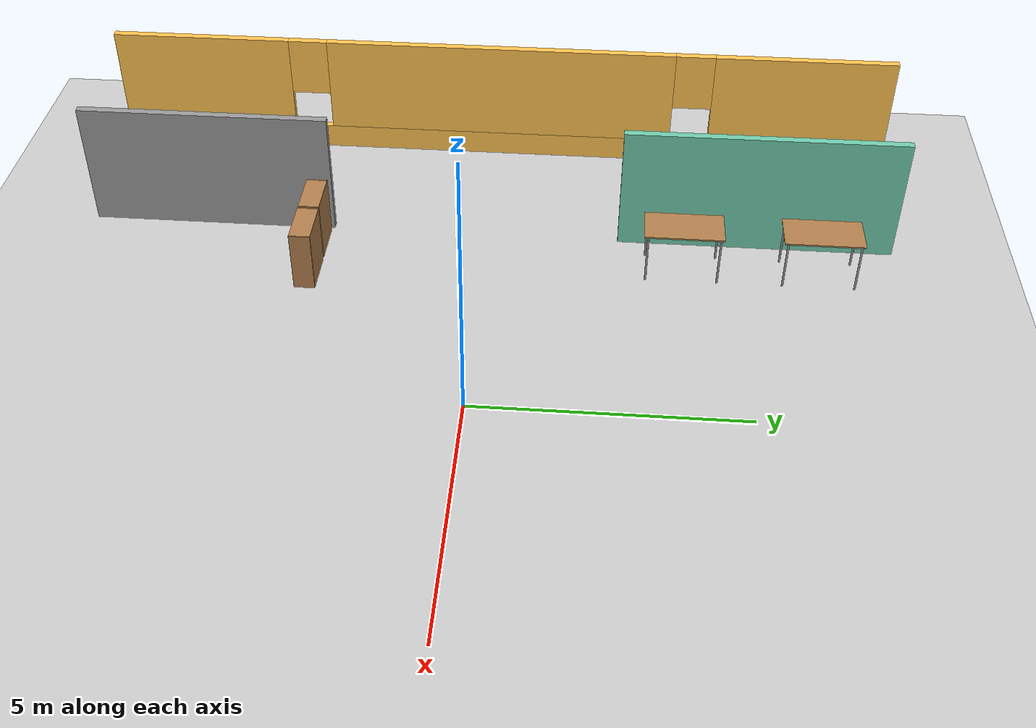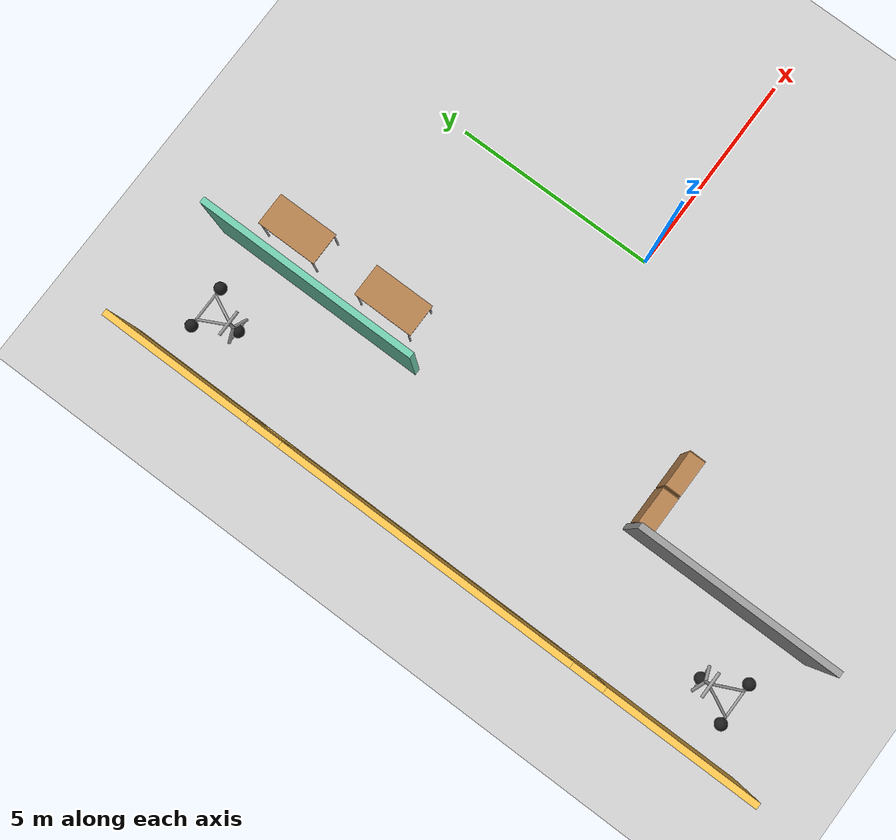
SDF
<sdf version="1.7">
 <world name="default">
  <model name="ground_plane">
   <static>1</static>
   <link name="link">
    <collision name="collision">
     <geometry><plane><normal>0 0 1</normal><size>100 100</size></plane></geometry>
     <surface><friction><ode><mu>100</mu><mu2>50</mu2></ode></friction></surface>
    </collision>
    <visual name="visual">
     <cast_shadows>0</cast_shadows>
     <geometry><plane><normal>0 0 1</normal><size>100 100</size></plane></geometry>
     <material>
      <script><uri>file://media/materials/scripts/gazebo.material</uri><name>Gazebo/Grey</name></script>
     </material>
    </visual>
   </link>
  </model>
  <model name="basic_office">
   <link name="Wall_17">
    <pose>-8 0 0 0 -0 1.5708</pose>
    <inertial>
     <mass>1</mass>
     <inertia><ixx>1</ixx><ixy>0</ixy><ixz>0</ixz><iyy>1</iyy><iyz>0</iyz><izz>1</izz></inertia>
    </inertial>
    <visual name="Wall_17_Visual_1">
     <pose>1.8375 0 0.25 0 -0 0</pose>
     <geometry><box><size>12.475 0.15 0.5</size></box></geometry>
     <material>
      <script><uri>file://media/materials/scripts/gazebo.material</uri><name>Gazebo/Grey</name></script>
      <ambient>1 0.765 0.306 1</ambient>
      <shader type="pixel"><normal_map>__default__</normal_map></shader>
      <diffuse>0.7 0.7 0.7 1</diffuse>
      <specular>0.01 0.01 0.01 1</specular>
      <emissive>0 0 0 1</emissive>
     </material>
     <meta><layer>0</layer></meta>
    </visual>
    <visual name="Wall_17_Visual_2">
     <pose>0 0 1.5 0 -0 0</pose>
     <geometry><box><size>7.2 0.15 2</size></box></geometry>
     <material>
      <script><uri>file://media/materials/scripts/gazebo.material</uri><name>Gazebo/Grey</name></script>
      <ambient>1 0.765 0.306 1</ambient>
      <shader type="pixel"><normal_map>__default__</normal_map></shader>
      <diffuse>0.7 0.7 0.7 1</diffuse>
      <specular>0.01 0.01 0.01 1</specular>
      <emissive>0 0 0 1</emissive>
     </material>
     <meta><layer>0</layer></meta>
    </visual>
    <visual name="Wall_17_Visual_0">
     <pose>-6.2375 0 1.25 0 -0 0</pose>
     <geometry><box><size>3.675 0.15 2.5</size></box></geometry>
     <material>
      <script><uri>file://media/materials/scripts/gazebo.material</uri><name>Gazebo/Grey</name></script>
      <ambient>1 0.765 0.306 1</ambient>
      <shader type="pixel"><normal_map>__default__</normal_map></shader>
      <diffuse>0.7 0.7 0.7 1</diffuse>
      <specular>0.01 0.01 0.01 1</specular>
      <emissive>0 0 0 1</emissive>
     </material>
     <meta><layer>0</layer></meta>
    </visual>
    <visual name="Wall_17_Visual_5">
     <pose>4 0 1.9 0 -0 0</pose>
     <geometry><box><size>0.8 0.15 1.2</size></box></geometry>
     <material>
      <script><uri>file://media/materials/scripts/gazebo.material</uri><name>Gazebo/Grey</name></script>
      <ambient>1 0.765 0.306 1</ambient>
      <shader type="pixel"><normal_map>__default__</normal_map></shader>
      <diffuse>0.7 0.7 0.7 1</diffuse>
      <specular>0.01 0.01 0.01 1</specular>
      <emissive>0 0 0 1</emissive>
     </material>
     <meta><layer>0</layer></meta>
    </visual>
    <visual name="Wall_17_Visual_3">
     <pose>6.2375 0 1.5 0 -0 0</pose>
     <geometry><box><size>3.675 0.15 2</size></box></geometry>
     <material>
      <script><uri>file://media/materials/scripts/gazebo.material</uri><name>Gazebo/Grey</name></script>
      <ambient>1 0.765 0.306 1</ambient>
      <shader type="pixel"><normal_map>__default__</normal_map></shader>
      <diffuse>0.7 0.7 0.7 1</diffuse>
      <specular>0.01 0.01 0.01 1</specular>
      <emissive>0 0 0 1</emissive>
     </material>
     <meta><layer>0</layer></meta>
    </visual>
    <visual name="Wall_17_Visual_4">
     <pose>-4 0 1.9 0 -0 0</pose>
     <geometry><box><size>0.8 0.15 1.2</size></box></geometry>
     <material>
      <script><uri>file://media/materials/scripts/gazebo.material</uri><name>Gazebo/Grey</name></script>
      <ambient>1 0.765 0.306 1</ambient>
      <shader type="pixel"><normal_map>__default__</normal_map></shader>
      <diffuse>0.7 0.7 0.7 1</diffuse>
      <specular>0.01 0.01 0.01 1</specular>
      <emissive>0 0 0 1</emissive>
     </material>
     <meta><layer>0</layer></meta>
    </visual>
    <collision name="Wall_17_Collision_3">
     <pose>6.2375 0 1.5 0 -0 0</pose>
     <geometry><box><size>3.675 0.15 2</size></box></geometry>
     <surface>
      <friction>
       <ode><mu>1</mu><mu2>1</mu2><fdir1>0 0 0</fdir1><slip1>0</slip1><slip2>0</slip2></ode>
       <torsional>
        <coefficient>1</coefficient>
        <patch_radius>0</patch_radius>
        <surface_radius>0</surface_radius>
        <use_patch_radius>1</use_patch_radius>
        <ode><slip>0</slip></ode>
       </torsional>
      </friction>
      <bounce><restitution_coefficient>0</restitution_coefficient><threshold>1e+06</threshold></bounce>
      <contact>
       <collide_without_contact>0</collide_without_contact>
       <collide_without_contact_bitmask>1</collide_without_contact_bitmask>
       <collide_bitmask>1</collide_bitmask>
       <ode>
        <soft_cfm>0</soft_cfm>
        <soft_erp>0.2</soft_erp>
        <kp>1e+13</kp>
        <kd>1</kd>
        <max_vel>0.01</max_vel>
        <min_depth>0</min_depth>
       </ode>
       <bullet>
        <split_impulse>1</split_impulse>
        <split_impulse_penetration_threshold>-0.01</split_impulse_penetration_threshold>
        <soft_cfm>0</soft_cfm>
        <soft_erp>0.2</soft_erp>
        <kp>1e+13</kp>
        <kd>1</kd>
       </bullet>
      </contact>
     </surface>
    </collision>
    <collision name="Wall_17_Collision_5">
     <pose>4 0 1.9 0 -0 0</pose>
     <geometry><box><size>0.8 0.15 1.2</size></box></geometry>
     <surface>
      <friction>
       <ode><mu>1</mu><mu2>1</mu2><fdir1>0 0 0</fdir1><slip1>0</slip1><slip2>0</slip2></ode>
       <torsional>
        <coefficient>1</coefficient>
        <patch_radius>0</patch_radius>
        <surface_radius>0</surface_radius>
        <use_patch_radius>1</use_patch_radius>
        <ode><slip>0</slip></ode>
       </torsional>
      </friction>
      <bounce><restitution_coefficient>0</restitution_coefficient><threshold>1e+06</threshold></bounce>
      <contact>
       <collide_without_contact>0</collide_without_contact>
       <collide_without_contact_bitmask>1</collide_without_contact_bitmask>
       <collide_bitmask>1</collide_bitmask>
       <ode>
        <soft_cfm>0</soft_cfm>
        <soft_erp>0.2</soft_erp>
        <kp>1e+13</kp>
        <kd>1</kd>
        <max_vel>0.01</max_vel>
        <min_depth>0</min_depth>
       </ode>
       <bullet>
        <split_impulse>1</split_impulse>
        <split_impulse_penetration_threshold>-0.01</split_impulse_penetration_threshold>
        <soft_cfm>0</soft_cfm>
        <soft_erp>0.2</soft_erp>
        <kp>1e+13</kp>
        <kd>1</kd>
       </bullet>
      </contact>
     </surface>
    </collision>
    <collision name="Wall_17_Collision_4">
     <pose>-4 0 1.9 0 -0 0</pose>
     <geometry><box><size>0.8 0.15 1.2</size></box></geometry>
     <surface>
      <friction>
       <ode><mu>1</mu><mu2>1</mu2><fdir1>0 0 0</fdir1><slip1>0</slip1><slip2>0</slip2></ode>
       <torsional>
        <coefficient>1</coefficient>
        <patch_radius>0</patch_radius>
        <surface_radius>0</surface_radius>
        <use_patch_radius>1</use_patch_radius>
        <ode><slip>0</slip></ode>
       </torsional>
      </friction>
      <bounce><restitution_coefficient>0</restitution_coefficient><threshold>1e+06</threshold></bounce>
      <contact>
       <collide_without_contact>0</collide_without_contact>
       <collide_without_contact_bitmask>1</collide_without_contact_bitmask>
       <collide_bitmask>1</collide_bitmask>
       <ode>
        <soft_cfm>0</soft_cfm>
        <soft_erp>0.2</soft_erp>
        <kp>1e+13</kp>
        <kd>1</kd>
        <max_vel>0.01</max_vel>
        <min_depth>0</min_depth>
       </ode>
       <bullet>
        <split_impulse>1</split_impulse>
        <split_impulse_penetration_threshold>-0.01</split_impulse_penetration_threshold>
        <soft_cfm>0</soft_cfm>
        <soft_erp>0.2</soft_erp>
        <kp>1e+13</kp>
        <kd>1</kd>
       </bullet>
      </contact>
     </surface>
    </collision>
    <collision name="Wall_17_Collision_0">
     <pose>-6.2375 0 1.25 0 -0 0</pose>
     <geometry><box><size>3.675 0.15 2.5</size></box></geometry>
     <surface>
      <friction>
       <ode><mu>1</mu><mu2>1</mu2><fdir1>0 0 0</fdir1><slip1>0</slip1><slip2>0</slip2></ode>
       <torsional>
        <coefficient>1</coefficient>
        <patch_radius>0</patch_radius>
        <surface_radius>0</surface_radius>
        <use_patch_radius>1</use_patch_radius>
        <ode><slip>0</slip></ode>
       </torsional>
      </friction>
      <bounce><restitution_coefficient>0</restitution_coefficient><threshold>1e+06</threshold></bounce>
      <contact>
       <collide_without_contact>0</collide_without_contact>
       <collide_without_contact_bitmask>1</collide_without_contact_bitmask>
       <collide_bitmask>1</collide_bitmask>
       <ode>
        <soft_cfm>0</soft_cfm>
        <soft_erp>0.2</soft_erp>
        <kp>1e+13</kp>
        <kd>1</kd>
        <max_vel>0.01</max_vel>
        <min_depth>0</min_depth>
       </ode>
       <bullet>
        <split_impulse>1</split_impulse>
        <split_impulse_penetration_threshold>-0.01</split_impulse_penetration_threshold>
        <soft_cfm>0</soft_cfm>
        <soft_erp>0.2</soft_erp>
        <kp>1e+13</kp>
        <kd>1</kd>
       </bullet>
      </contact>
     </surface>
    </collision>
    <collision name="Wall_17_Collision_1">
     <pose>1.8375 0 0.25 0 -0 0</pose>
     <geometry><box><size>12.475 0.15 0.5</size></box></geometry>
     <surface>
      <friction>
       <ode><mu>1</mu><mu2>1</mu2><fdir1>0 0 0</fdir1><slip1>0</slip1><slip2>0</slip2></ode>
       <torsional>
        <coefficient>1</coefficient>
        <patch_radius>0</patch_radius>
        <surface_radius>0</surface_radius>
        <use_patch_radius>1</use_patch_radius>
        <ode><slip>0</slip></ode>
       </torsional>
      </friction>
      <bounce><restitution_coefficient>0</restitution_coefficient><threshold>1e+06</threshold></bounce>
      <contact>
       <collide_without_contact>0</collide_without_contact>
       <collide_without_contact_bitmask>1</collide_without_contact_bitmask>
       <collide_bitmask>1</collide_bitmask>
       <ode>
        <soft_cfm>0</soft_cfm>
        <soft_erp>0.2</soft_erp>
        <kp>1e+13</kp>
        <kd>1</kd>
        <max_vel>0.01</max_vel>
        <min_depth>0</min_depth>
       </ode>
       <bullet>
        <split_impulse>1</split_impulse>
        <split_impulse_penetration_threshold>-0.01</split_impulse_penetration_threshold>
        <soft_cfm>0</soft_cfm>
        <soft_erp>0.2</soft_erp>
        <kp>1e+13</kp>
        <kd>1</kd>
       </bullet>
      </contact>
     </surface>
    </collision>
    <collision name="Wall_17_Collision_2">
     <pose>0 0 1.5 0 -0 0</pose>
     <geometry><box><size>7.2 0.15 2</size></box></geometry>
     <surface>
      <friction>
       <ode><mu>1</mu><mu2>1</mu2><fdir1>0 0 0</fdir1><slip1>0</slip1><slip2>0</slip2></ode>
       <torsional>
        <coefficient>1</coefficient>
        <patch_radius>0</patch_radius>
        <surface_radius>0</surface_radius>
        <use_patch_radius>1</use_patch_radius>
        <ode><slip>0</slip></ode>
       </torsional>
      </friction>
      <bounce><restitution_coefficient>0</restitution_coefficient><threshold>1e+06</threshold></bounce>
      <contact>
       <collide_without_contact>0</collide_without_contact>
       <collide_without_contact_bitmask>1</collide_without_contact_bitmask>
       <collide_bitmask>1</collide_bitmask>
       <ode>
        <soft_cfm>0</soft_cfm>
        <soft_erp>0.2</soft_erp>
        <kp>1e+13</kp>
        <kd>1</kd>
        <max_vel>0.01</max_vel>
        <min_depth>0</min_depth>
       </ode>
       <bullet>
        <split_impulse>1</split_impulse>
        <split_impulse_penetration_threshold>-0.01</split_impulse_penetration_threshold>
        <soft_cfm>0</soft_cfm>
        <soft_erp>0.2</soft_erp>
        <kp>1e+13</kp>
        <kd>1</kd>
       </bullet>
      </contact>
     </surface>
    </collision>
   </link>
   <link name="Wall_22">
    <pose>-5 5.25 0 0 0 -1.5708</pose>
    <inertial>
     <mass>1</mass>
     <inertia><ixx>1</ixx><ixy>0</ixy><ixz>0</ixz><iyy>1</iyy><iyz>0</iyz><izz>1</izz></inertia>
    </inertial>
    <visual name="Wall_22_Visual">
     <pose>0 0 1.25 0 -0 0</pose>
     <geometry><box><size>5.35 0.15 2.5</size></box></geometry>
     <material>
      <script><uri>file://media/materials/scripts/gazebo.material</uri><name>Gazebo/Grey</name></script>
      <ambient>0.435 0.796 0.675 1</ambient>
      <shader type="pixel"><normal_map>__default__</normal_map></shader>
      <diffuse>0.7 0.7 0.7 1</diffuse>
      <specular>0.01 0.01 0.01 1</specular>
      <emissive>0 0 0 1</emissive>
     </material>
     <meta><layer>0</layer></meta>
    </visual>
    <collision name="Wall_22_Collision">
     <pose>0 0 1.25 0 -0 0</pose>
     <geometry><box><size>5.35 0.15 2.5</size></box></geometry>
     <surface>
      <friction>
       <ode><mu>1</mu><mu2>1</mu2><fdir1>0 0 0</fdir1><slip1>0</slip1><slip2>0</slip2></ode>
       <torsional>
        <coefficient>1</coefficient>
        <patch_radius>0</patch_radius>
        <surface_radius>0</surface_radius>
        <use_patch_radius>1</use_patch_radius>
        <ode><slip>0</slip></ode>
       </torsional>
      </friction>
      <bounce><restitution_coefficient>0</restitution_coefficient><threshold>1e+06</threshold></bounce>
      <contact>
       <collide_without_contact>0</collide_without_contact>
       <collide_without_contact_bitmask>1</collide_without_contact_bitmask>
       <collide_bitmask>1</collide_bitmask>
       <ode>
        <soft_cfm>0</soft_cfm>
        <soft_erp>0.2</soft_erp>
        <kp>1e+13</kp>
        <kd>1</kd>
        <max_vel>0.01</max_vel>
        <min_depth>0</min_depth>
       </ode>
       <bullet>
        <split_impulse>1</split_impulse>
        <split_impulse_penetration_threshold>-0.01</split_impulse_penetration_threshold>
        <soft_cfm>0</soft_cfm>
        <soft_erp>0.2</soft_erp>
        <kp>1e+13</kp>
        <kd>1</kd>
       </bullet>
      </contact>
     </surface>
    </collision>
   </link>
   <link name="Wall_46">
    <pose>-5 -5.5 0 0 0 -1.5708</pose>
    <inertial>
     <mass>1</mass>
     <inertia><ixx>1</ixx><ixy>0</ixy><ixz>0</ixz><iyy>1</iyy><iyz>0</iyz><izz>1</izz></inertia>
    </inertial>
    <visual name="Wall_46_Visual">
     <pose>0 0 1.25 0 -0 0</pose>
     <geometry><box><size>4.85 0.15 2.5</size></box></geometry>
     <material>
      <script><uri>file://media/materials/scripts/gazebo.material</uri><name>Gazebo/Grey</name></script>
      <ambient>0.18 0.204 0.212 1</ambient>
      <shader type="pixel"><normal_map>__default__</normal_map></shader>
      <diffuse>0.7 0.7 0.7 1</diffuse>
      <specular>0.01 0.01 0.01 1</specular>
      <emissive>0 0 0 1</emissive>
     </material>
     <meta><layer>0</layer></meta>
    </visual>
    <collision name="Wall_46_Collision">
     <pose>0 0 1.25 0 -0 0</pose>
     <geometry><box><size>4.85 0.15 2.5</size></box></geometry>
     <surface>
      <friction>
       <ode><mu>1</mu><mu2>1</mu2><fdir1>0 0 0</fdir1><slip1>0</slip1><slip2>0</slip2></ode>
       <torsional>
        <coefficient>1</coefficient>
        <patch_radius>0</patch_radius>
        <surface_radius>0</surface_radius>
        <use_patch_radius>1</use_patch_radius>
        <ode><slip>0</slip></ode>
       </torsional>
      </friction>
      <bounce><restitution_coefficient>0</restitution_coefficient><threshold>1e+06</threshold></bounce>
      <contact>
       <collide_without_contact>0</collide_without_contact>
       <collide_without_contact_bitmask>1</collide_without_contact_bitmask>
       <collide_bitmask>1</collide_bitmask>
       <ode>
        <soft_cfm>0</soft_cfm>
        <soft_erp>0.2</soft_erp>
        <kp>1e+13</kp>
        <kd>1</kd>
        <max_vel>0.01</max_vel>
        <min_depth>0</min_depth>
       </ode>
       <bullet>
        <split_impulse>1</split_impulse>
        <split_impulse_penetration_threshold>-0.01</split_impulse_penetration_threshold>
        <soft_cfm>0</soft_cfm>
        <soft_erp>0.2</soft_erp>
        <kp>1e+13</kp>
        <kd>1</kd>
       </bullet>
      </contact>
     </surface>
    </collision>
   </link>
   <static>1</static>
  </model>
  <model name="trisphere_cycle">
   <link name="frame">
    <pose>-0.408559 0 0.385023 0 -0.522021 0</pose>
    <inertial>
     <mass>10</mass>
     <inertia><ixx>0.228</ixx><iyy>0.743521</iyy><izz>0.965521</izz><ixy>0</ixy><ixz>0</ixz><iyz>0</iyz></inertia>
    </inertial>
    <collision name="axle_collision">
     <pose>-0.471335 0 0 1.5708 -0 0</pose>
     <geometry><cylinder><length>1.03923</length><radius>0.03</radius></cylinder></geometry>
    </collision>
    <visual name="axle_visual">
     <pose>-0.471335 0 0 1.5708 -0 0</pose>
     <geometry><cylinder><length>1.03923</length><radius>0.03</radius></cylinder></geometry>
     <material>
      <script><uri>file://media/materials/scripts/gazebo.material</uri><name>Gazebo/Grey</name></script>
     </material>
    </visual>
    <collision name="frame_left_collision">
     <pose>0 0.171552 0 -2.79253 1.57079 3.14159</pose>
     <geometry><cylinder><length>1.00317</length><radius>0.03</radius></cylinder></geometry>
    </collision>
    <visual name="frame_left_visual">
     <pose>0 0.171552 0 -2.79253 1.57079 3.14159</pose>
     <geometry><cylinder><length>1.00317</length><radius>0.03</radius></cylinder></geometry>
     <material>
      <script><uri>file://media/materials/scripts/gazebo.material</uri><name>Gazebo/Grey</name></script>
     </material>
    </visual>
    <collision name="frame_right_collision">
     <pose>0 -0.171552 0 2.79253 1.57079 -3.14159</pose>
     <geometry><cylinder><length>1.00317</length><radius>0.03</radius></cylinder></geometry>
    </collision>
    <visual name="frame_right_visual">
     <pose>0 -0.171552 0 2.79253 1.57079 -3.14159</pose>
     <geometry><cylinder><length>1.00317</length><radius>0.03</radius></cylinder></geometry>
     <material>
      <script><uri>file://media/materials/scripts/gazebo.material</uri><name>Gazebo/Grey</name></script>
     </material>
    </visual>
   </link>
   <link name="fork">
    <pose>0.041441 0 0.385023 0 -0.174533 0</pose>
    <inertial>
     <mass>3</mass>
     <inertia>
      <ixx>0.158203</ixx>
      <iyy>0.0583594</iyy>
      <izz>0.102656</izz>
      <ixy>0</ixy>
      <ixz>0</ixz>
      <iyz>0</iyz>
     </inertia>
    </inertial>
    <collision name="handlebars_collision">
     <pose>0 0 0.397748 1.5708 -0 0</pose>
     <geometry><cylinder><length>0.636396</length><radius>0.0375</radius></cylinder></geometry>
    </collision>
    <visual name="handlebars_visual">
     <pose>0 0 0.397748 1.5708 -0 0</pose>
     <geometry><cylinder><length>0.636396</length><radius>0.0375</radius></cylinder></geometry>
     <material>
      <script><uri>file://media/materials/scripts/gazebo.material</uri><name>Gazebo/Grey</name></script>
     </material>
    </visual>
    <collision name="headtube_collision">
     <pose>0 0 0.238649 0 -0 0</pose>
     <geometry><cylinder><length>0.318198</length><radius>0.0375</radius></cylinder></geometry>
    </collision>
    <visual name="headtube_visual">
     <pose>0 0 0.238649 0 -0 0</pose>
     <geometry><cylinder><length>0.318198</length><radius>0.0375</radius></cylinder></geometry>
     <material>
      <script><uri>file://media/materials/scripts/gazebo.material</uri><name>Gazebo/Grey</name></script>
     </material>
    </visual>
    <collision name="spindle_collision">
     <pose>0 0 -0.238649 1.5708 -0 0</pose>
     <geometry><cylinder><length>0.636396</length><radius>0.015</radius></cylinder></geometry>
    </collision>
    <visual name="spindle_visual">
     <pose>0 0 -0.238649 1.5708 -0 0</pose>
     <geometry><cylinder><length>0.636396</length><radius>0.015</radius></cylinder></geometry>
     <material>
      <script><uri>file://media/materials/scripts/gazebo.material</uri><name>Gazebo/Grey</name></script>
     </material>
    </visual>
    <collision name="fork_left_collision">
     <pose>0 0.159099 -0.07955 0.785398 -0 0</pose>
     <geometry><cylinder><length>0.45</length><radius>0.0375</radius></cylinder></geometry>
    </collision>
    <visual name="fork_left_visual">
     <pose>0 0.159099 -0.07955 0.785398 -0 0</pose>
     <geometry><cylinder><length>0.45</length><radius>0.0375</radius></cylinder></geometry>
     <material>
      <script><uri>file://media/materials/scripts/gazebo.material</uri><name>Gazebo/Grey</name></script>
     </material>
    </visual>
    <collision name="fork_right_collision">
     <pose>0 -0.159099 -0.07955 -0.785398 0 0</pose>
     <geometry><cylinder><length>0.45</length><radius>0.0375</radius></cylinder></geometry>
    </collision>
    <visual name="fork_right_visual">
     <pose>0 -0.159099 -0.07955 -0.785398 0 0</pose>
     <geometry><cylinder><length>0.45</length><radius>0.0375</radius></cylinder></geometry>
     <material>
      <script><uri>file://media/materials/scripts/gazebo.material</uri><name>Gazebo/Grey</name></script>
     </material>
    </visual>
   </link>
   <link name="wheel_front">
    <pose>0.082882 0 0.15 0 -0 0</pose>
    <inertial>
     <mass>0.5</mass>
     <inertia><ixx>0.0045</ixx><iyy>0.0045</iyy><izz>0.0045</izz><ixy>0</ixy><ixz>0</ixz><iyz>0</iyz></inertia>
    </inertial>
    <collision name="collision">
     <geometry><sphere><radius>0.15</radius></sphere></geometry>
     <surface><contact><ode><kp>1e+08</kp><kd>1</kd><min_depth>0.0005</min_depth></ode></contact></surface>
    </collision>
    <visual name="visual">
     <geometry><sphere><radius>0.15</radius></sphere></geometry>
     <material>
      <script><uri>file://media/materials/scripts/gazebo.material</uri><name>Gazebo/Black</name></script>
     </material>
    </visual>
   </link>
   <joint name="wheel_front_steer" type="revolute">
    <parent>frame</parent>
    <child>fork</child>
    <axis>
     <xyz>0 0 1</xyz>
     <limit><lower>-0.959931</lower><upper>0.959931</upper></limit>
     <dynamics><spring_reference>0</spring_reference><spring_stiffness>0</spring_stiffness></dynamics>
    </axis>
   </joint>
   <joint name="wheel_front_spin" type="revolute">
    <parent>fork</parent>
    <child>wheel_front</child>
    <axis>
     <xyz>0 1 0</xyz>
     <limit><lower>-1e+16</lower><upper>1e+16</upper></limit>
     <dynamics><spring_reference>0</spring_reference><spring_stiffness>0</spring_stiffness></dynamics>
    </axis>
   </joint>
   <link name="wheel_rear_left">
    <pose>-0.817118 0.519615 0.15 0 -0 0</pose>
    <inertial>
     <mass>0.5</mass>
     <inertia><ixx>0.0045</ixx><iyy>0.0045</iyy><izz>0.0045</izz><ixy>0</ixy><ixz>0</ixz><iyz>0</iyz></inertia>
    </inertial>
    <collision name="collision">
     <geometry><sphere><radius>0.15</radius></sphere></geometry>
     <surface><contact><ode><kp>1e+08</kp><kd>1</kd><min_depth>0.0005</min_depth></ode></contact></surface>
    </collision>
    <visual name="visual">
     <geometry><sphere><radius>0.15</radius></sphere></geometry>
     <material>
      <script><uri>file://media/materials/scripts/gazebo.material</uri><name>Gazebo/Black</name></script>
     </material>
    </visual>
   </link>
   <joint name="wheel_rear_left_spin" type="revolute">
    <parent>frame</parent>
    <child>wheel_rear_left</child>
    <axis>
     <xyz>0 1 0</xyz>
     <limit><lower>-1e+16</lower><upper>1e+16</upper></limit>
     <dynamics><spring_reference>0</spring_reference><spring_stiffness>0</spring_stiffness></dynamics>
    </axis>
   </joint>
   <link name="wheel_rear_right">
    <pose>-0.817118 -0.519615 0.15 0 -0 0</pose>
    <inertial>
     <mass>0.5</mass>
     <inertia><ixx>0.0045</ixx><iyy>0.0045</iyy><izz>0.0045</izz><ixy>0</ixy><ixz>0</ixz><iyz>0</iyz></inertia>
    </inertial>
    <collision name="collision">
     <geometry><sphere><radius>0.15</radius></sphere></geometry>
     <surface><contact><ode><kp>1e+08</kp><kd>1</kd><min_depth>0.0005</min_depth></ode></contact></surface>
    </collision>
    <visual name="visual">
     <geometry><sphere><radius>0.15</radius></sphere></geometry>
     <material>
      <script><uri>file://media/materials/scripts/gazebo.material</uri><name>Gazebo/Black</name></script>
     </material>
    </visual>
   </link>
   <joint name="wheel_rear_right_spin" type="revolute">
    <parent>frame</parent>
    <child>wheel_rear_right</child>
    <axis>
     <xyz>0 1 0</xyz>
     <limit><lower>-1e+16</lower><upper>1e+16</upper></limit>
     <dynamics><spring_reference>0</spring_reference><spring_stiffness>0</spring_stiffness></dynamics>
    </axis>
   </joint>
   <pose>-6.65006 6.34995 -0.000501 0 1e-06 -1.57126</pose>
  </model>
  <model name="bookshelf">
   <static>1</static>
   <link name="link">
    <inertial><mass>1</mass></inertial>
    <collision name="back">
     <pose>0 0.005 0.6 0 -0 0</pose>
     <geometry><box><size>0.9 0.01 1.2</size></box></geometry>
    </collision>
    <visual name="visual1">
     <pose>0 0.005 0.6 0 -0 0</pose>
     <geometry><box><size>0.9 0.01 1.2</size></box></geometry>
     <material>
      <script><uri>file://media/materials/scripts/gazebo.material</uri><name>Gazebo/Wood</name></script>
     </material>
    </visual>
    <collision name="left_side">
     <pose>0.45 -0.195 0.6 0 -0 0</pose>
     <geometry><box><size>0.02 0.4 1.2</size></box></geometry>
    </collision>
    <visual name="visual2">
     <pose>0.45 -0.195 0.6 0 -0 0</pose>
     <geometry><box><size>0.02 0.4 1.2</size></box></geometry>
     <material>
      <script><uri>file://media/materials/scripts/gazebo.material</uri><name>Gazebo/Wood</name></script>
     </material>
    </visual>
    <collision name="right_side">
     <pose>-0.45 -0.195 0.6 0 -0 0</pose>
     <geometry><box><size>0.02 0.4 1.2</size></box></geometry>
    </collision>
    <visual name="visual3">
     <pose>-0.45 -0.195 0.6 0 -0 0</pose>
     <geometry><box><size>0.02 0.4 1.2</size></box></geometry>
     <material>
      <script><uri>file://media/materials/scripts/gazebo.material</uri><name>Gazebo/Wood</name></script>
     </material>
    </visual>
    <collision name="bottom">
     <pose>0 -0.195 0.03 0 -0 0</pose>
     <geometry><box><size>0.88 0.4 0.06</size></box></geometry>
    </collision>
    <visual name="visual4">
     <pose>0 -0.195 0.03 0 -0 0</pose>
     <geometry><box><size>0.88 0.4 0.06</size></box></geometry>
     <material>
      <script><uri>file://media/materials/scripts/gazebo.material</uri><name>Gazebo/Wood</name></script>
     </material>
    </visual>
    <collision name="top">
     <pose>0 -0.195 1.19 0 -0 0</pose>
     <geometry><box><size>0.88 0.4 0.02</size></box></geometry>
    </collision>
    <visual name="visual5">
     <pose>0 -0.195 1.19 0 -0 0</pose>
     <geometry><box><size>0.88 0.4 0.02</size></box></geometry>
     <material>
      <script><uri>file://media/materials/scripts/gazebo.material</uri><name>Gazebo/Wood</name></script>
     </material>
    </visual>
    <collision name="low_shelf">
     <pose>0 -0.195 0.43 0 -0 0</pose>
     <geometry><box><size>0.88 0.4 0.02</size></box></geometry>
    </collision>
    <visual name="visual6">
     <pose>0 -0.195 0.43 0 -0 0</pose>
     <geometry><box><size>0.88 0.4 0.02</size></box></geometry>
     <material>
      <script><uri>file://media/materials/scripts/gazebo.material</uri><name>Gazebo/Wood</name></script>
     </material>
    </visual>
    <collision name="high_shelf">
     <pose>0 -0.195 0.8 0 -0 0</pose>
     <geometry><box><size>0.88 0.4 0.02</size></box></geometry>
    </collision>
    <visual name="visual7">
     <pose>0 -0.195 0.8 0 -0 0</pose>
     <geometry><box><size>0.88 0.4 0.02</size></box></geometry>
     <material>
      <script><uri>file://media/materials/scripts/gazebo.material</uri><name>Gazebo/Wood</name></script>
     </material>
    </visual>
   </link>
   <pose>-4.4 -3.14159 0 0 -0 0</pose>
  </model>
  <model name="table">
   <static>1</static>
   <link name="link">
    <collision name="surface">
     <pose>0 0 1 0 -0 0</pose>
     <geometry><box><size>1.5 0.8 0.03</size></box></geometry>
     <surface><friction><ode><mu>0.6</mu><mu2>0.6</mu2></ode></friction></surface>
    </collision>
    <visual name="visual1">
     <pose>0 0 1 0 -0 0</pose>
     <geometry><box><size>1.5 0.8 0.03</size></box></geometry>
     <material>
      <script><uri>file://media/materials/scripts/gazebo.material</uri><name>Gazebo/Wood</name></script>
     </material>
    </visual>
    <collision name="front_left_leg_0">
     <pose>0.68 0.38 0.5 0 -0 0</pose>
     <geometry><cylinder><radius>0.02</radius><length>1</length></cylinder></geometry>
    </collision>
    <visual name="front_left_leg">
     <pose>0.68 0.38 0.5 0 -0 0</pose>
     <geometry><cylinder><radius>0.02</radius><length>1</length></cylinder></geometry>
     <material>
      <script><uri>file://media/materials/scripts/gazebo.material</uri><name>Gazebo/Grey</name></script>
     </material>
    </visual>
    <collision name="front_right_leg_0">
     <pose>0.68 -0.38 0.5 0 -0 0</pose>
     <geometry><cylinder><radius>0.02</radius><length>1</length></cylinder></geometry>
    </collision>
    <visual name="front_right_leg">
     <pose>0.68 -0.38 0.5 0 -0 0</pose>
     <geometry><cylinder><radius>0.02</radius><length>1</length></cylinder></geometry>
     <material>
      <script><uri>file://media/materials/scripts/gazebo.material</uri><name>Gazebo/Grey</name></script>
     </material>
    </visual>
    <collision name="back_right_leg_0">
     <pose>-0.68 -0.38 0.5 0 -0 0</pose>
     <geometry><cylinder><radius>0.02</radius><length>1</length></cylinder></geometry>
    </collision>
    <visual name="back_right_leg">
     <pose>-0.68 -0.38 0.5 0 -0 0</pose>
     <geometry><cylinder><radius>0.02</radius><length>1</length></cylinder></geometry>
     <material>
      <script><uri>file://media/materials/scripts/gazebo.material</uri><name>Gazebo/Grey</name></script>
     </material>
    </visual>
    <collision name="back_left_leg_0">
     <pose>-0.68 0.38 0.5 0 -0 0</pose>
     <geometry><cylinder><radius>0.02</radius><length>1</length></cylinder></geometry>
    </collision>
    <visual name="back_left_leg_">
     <pose>-0.68 0.38 0.5 0 -0 0</pose>
     <geometry><cylinder><radius>0.02</radius><length>1</length></cylinder></geometry>
     <material>
      <script><uri>file://media/materials/scripts/gazebo.material</uri><name>Gazebo/Grey</name></script>
     </material>
    </visual>
   </link>
   <pose>-4.15 3.8 0 0 0 -1.5708</pose>
  </model>
  <model name="bookshelf_clone">
   <static>1</static>
   <link name="link">
    <inertial><mass>1</mass></inertial>
    <collision name="back">
     <pose>0 0.005 0.6 0 -0 0</pose>
     <geometry><box><size>0.9 0.01 1.2</size></box></geometry>
    </collision>
    <visual name="visual1">
     <pose>0 0.005 0.6 0 -0 0</pose>
     <geometry><box><size>0.9 0.01 1.2</size></box></geometry>
     <material>
      <script><uri>file://media/materials/scripts/gazebo.material</uri><name>Gazebo/Wood</name></script>
     </material>
    </visual>
    <collision name="left_side">
     <pose>0.45 -0.195 0.6 0 -0 0</pose>
     <geometry><box><size>0.02 0.4 1.2</size></box></geometry>
    </collision>
    <visual name="visual2">
     <pose>0.45 -0.195 0.6 0 -0 0</pose>
     <geometry><box><size>0.02 0.4 1.2</size></box></geometry>
     <material>
      <script><uri>file://media/materials/scripts/gazebo.material</uri><name>Gazebo/Wood</name></script>
     </material>
    </visual>
    <collision name="right_side">
     <pose>-0.45 -0.195 0.6 0 -0 0</pose>
     <geometry><box><size>0.02 0.4 1.2</size></box></geometry>
    </collision>
    <visual name="visual3">
     <pose>-0.45 -0.195 0.6 0 -0 0</pose>
     <geometry><box><size>0.02 0.4 1.2</size></box></geometry>
     <material>
      <script><uri>file://media/materials/scripts/gazebo.material</uri><name>Gazebo/Wood</name></script>
     </material>
    </visual>
    <collision name="bottom">
     <pose>0 -0.195 0.03 0 -0 0</pose>
     <geometry><box><size>0.88 0.4 0.06</size></box></geometry>
    </collision>
    <visual name="visual4">
     <pose>0 -0.195 0.03 0 -0 0</pose>
     <geometry><box><size>0.88 0.4 0.06</size></box></geometry>
     <material>
      <script><uri>file://media/materials/scripts/gazebo.material</uri><name>Gazebo/Wood</name></script>
     </material>
    </visual>
    <collision name="top">
     <pose>0 -0.195 1.19 0 -0 0</pose>
     <geometry><box><size>0.88 0.4 0.02</size></box></geometry>
    </collision>
    <visual name="visual5">
     <pose>0 -0.195 1.19 0 -0 0</pose>
     <geometry><box><size>0.88 0.4 0.02</size></box></geometry>
     <material>
      <script><uri>file://media/materials/scripts/gazebo.material</uri><name>Gazebo/Wood</name></script>
     </material>
    </visual>
    <collision name="low_shelf">
     <pose>0 -0.195 0.43 0 -0 0</pose>
     <geometry><box><size>0.88 0.4 0.02</size></box></geometry>
    </collision>
    <visual name="visual6">
     <pose>0 -0.195 0.43 0 -0 0</pose>
     <geometry><box><size>0.88 0.4 0.02</size></box></geometry>
     <material>
      <script><uri>file://media/materials/scripts/gazebo.material</uri><name>Gazebo/Wood</name></script>
     </material>
    </visual>
    <collision name="high_shelf">
     <pose>0 -0.195 0.8 0 -0 0</pose>
     <geometry><box><size>0.88 0.4 0.02</size></box></geometry>
    </collision>
    <visual name="visual7">
     <pose>0 -0.195 0.8 0 -0 0</pose>
     <geometry><box><size>0.88 0.4 0.02</size></box></geometry>
     <material>
      <script><uri>file://media/materials/scripts/gazebo.material</uri><name>Gazebo/Wood</name></script>
     </material>
    </visual>
   </link>
   <pose>-3.45 -3.14159 0 0 -0 0</pose>
  </model>
  <model name="trisphere_cycle_clone">
   <link name="frame">
    <pose>-0.408559 0 0.385023 0 -0.522021 0</pose>
    <inertial>
     <mass>10</mass>
     <inertia><ixx>0.228</ixx><iyy>0.743521</iyy><izz>0.965521</izz><ixy>0</ixy><ixz>0</ixz><iyz>0</iyz></inertia>
    </inertial>
    <collision name="axle_collision">
     <pose>-0.471335 0 0 1.5708 -0 0</pose>
     <geometry><cylinder><length>1.03923</length><radius>0.03</radius></cylinder></geometry>
    </collision>
    <visual name="axle_visual">
     <pose>-0.471335 0 0 1.5708 -0 0</pose>
     <geometry><cylinder><length>1.03923</length><radius>0.03</radius></cylinder></geometry>
     <material>
      <script><uri>file://media/materials/scripts/gazebo.material</uri><name>Gazebo/Grey</name></script>
     </material>
    </visual>
    <collision name="frame_left_collision">
     <pose>0 0.171552 0 -2.79253 1.57079 3.14159</pose>
     <geometry><cylinder><length>1.00317</length><radius>0.03</radius></cylinder></geometry>
    </collision>
    <visual name="frame_left_visual">
     <pose>0 0.171552 0 -2.79253 1.57079 3.14159</pose>
     <geometry><cylinder><length>1.00317</length><radius>0.03</radius></cylinder></geometry>
     <material>
      <script><uri>file://media/materials/scripts/gazebo.material</uri><name>Gazebo/Grey</name></script>
     </material>
    </visual>
    <collision name="frame_right_collision">
     <pose>0 -0.171552 0 2.79253 1.57079 -3.14159</pose>
     <geometry><cylinder><length>1.00317</length><radius>0.03</radius></cylinder></geometry>
    </collision>
    <visual name="frame_right_visual">
     <pose>0 -0.171552 0 2.79253 1.57079 -3.14159</pose>
     <geometry><cylinder><length>1.00317</length><radius>0.03</radius></cylinder></geometry>
     <material>
      <script><uri>file://media/materials/scripts/gazebo.material</uri><name>Gazebo/Grey</name></script>
     </material>
    </visual>
   </link>
   <link name="fork">
    <pose>0.041441 0 0.385023 0 -0.174533 0</pose>
    <inertial>
     <mass>3</mass>
     <inertia>
      <ixx>0.158203</ixx>
      <iyy>0.0583594</iyy>
      <izz>0.102656</izz>
      <ixy>0</ixy>
      <ixz>0</ixz>
      <iyz>0</iyz>
     </inertia>
    </inertial>
    <collision name="handlebars_collision">
     <pose>0 0 0.397748 1.5708 -0 0</pose>
     <geometry><cylinder><length>0.636396</length><radius>0.0375</radius></cylinder></geometry>
    </collision>
    <visual name="handlebars_visual">
     <pose>0 0 0.397748 1.5708 -0 0</pose>
     <geometry><cylinder><length>0.636396</length><radius>0.0375</radius></cylinder></geometry>
     <material>
      <script><uri>file://media/materials/scripts/gazebo.material</uri><name>Gazebo/Grey</name></script>
     </material>
    </visual>
    <collision name="headtube_collision">
     <pose>0 0 0.238649 0 -0 0</pose>
     <geometry><cylinder><length>0.318198</length><radius>0.0375</radius></cylinder></geometry>
    </collision>
    <visual name="headtube_visual">
     <pose>0 0 0.238649 0 -0 0</pose>
     <geometry><cylinder><length>0.318198</length><radius>0.0375</radius></cylinder></geometry>
     <material>
      <script><uri>file://media/materials/scripts/gazebo.material</uri><name>Gazebo/Grey</name></script>
     </material>
    </visual>
    <collision name="spindle_collision">
     <pose>0 0 -0.238649 1.5708 -0 0</pose>
     <geometry><cylinder><length>0.636396</length><radius>0.015</radius></cylinder></geometry>
    </collision>
    <visual name="spindle_visual">
     <pose>0 0 -0.238649 1.5708 -0 0</pose>
     <geometry><cylinder><length>0.636396</length><radius>0.015</radius></cylinder></geometry>
     <material>
      <script><uri>file://media/materials/scripts/gazebo.material</uri><name>Gazebo/Grey</name></script>
     </material>
    </visual>
    <collision name="fork_left_collision">
     <pose>0 0.159099 -0.07955 0.785398 -0 0</pose>
     <geometry><cylinder><length>0.45</length><radius>0.0375</radius></cylinder></geometry>
    </collision>
    <visual name="fork_left_visual">
     <pose>0 0.159099 -0.07955 0.785398 -0 0</pose>
     <geometry><cylinder><length>0.45</length><radius>0.0375</radius></cylinder></geometry>
     <material>
      <script><uri>file://media/materials/scripts/gazebo.material</uri><name>Gazebo/Grey</name></script>
     </material>
    </visual>
    <collision name="fork_right_collision">
     <pose>0 -0.159099 -0.07955 -0.785398 0 0</pose>
     <geometry><cylinder><length>0.45</length><radius>0.0375</radius></cylinder></geometry>
    </collision>
    <visual name="fork_right_visual">
     <pose>0 -0.159099 -0.07955 -0.785398 0 0</pose>
     <geometry><cylinder><length>0.45</length><radius>0.0375</radius></cylinder></geometry>
     <material>
      <script><uri>file://media/materials/scripts/gazebo.material</uri><name>Gazebo/Grey</name></script>
     </material>
    </visual>
   </link>
   <link name="wheel_front">
    <pose>0.082882 0 0.15 0 -0 0</pose>
    <inertial>
     <mass>0.5</mass>
     <inertia><ixx>0.0045</ixx><iyy>0.0045</iyy><izz>0.0045</izz><ixy>0</ixy><ixz>0</ixz><iyz>0</iyz></inertia>
    </inertial>
    <collision name="collision">
     <geometry><sphere><radius>0.15</radius></sphere></geometry>
     <surface><contact><ode><kp>1e+08</kp><kd>1</kd><min_depth>0.0005</min_depth></ode></contact></surface>
    </collision>
    <visual name="visual">
     <geometry><sphere><radius>0.15</radius></sphere></geometry>
     <material>
      <script><uri>file://media/materials/scripts/gazebo.material</uri><name>Gazebo/Black</name></script>
     </material>
    </visual>
   </link>
   <joint name="wheel_front_steer" type="revolute">
    <parent>frame</parent>
    <child>fork</child>
    <axis>
     <xyz>0 0 1</xyz>
     <limit><lower>-0.959931</lower><upper>0.959931</upper></limit>
     <dynamics><spring_reference>0</spring_reference><spring_stiffness>0</spring_stiffness></dynamics>
    </axis>
   </joint>
   <joint name="wheel_front_spin" type="revolute">
    <parent>fork</parent>
    <child>wheel_front</child>
    <axis>
     <xyz>0 1 0</xyz>
     <limit><lower>-1e+16</lower><upper>1e+16</upper></limit>
     <dynamics><spring_reference>0</spring_reference><spring_stiffness>0</spring_stiffness></dynamics>
    </axis>
   </joint>
   <link name="wheel_rear_left">
    <pose>-0.817118 0.519615 0.15 0 -0 0</pose>
    <inertial>
     <mass>0.5</mass>
     <inertia><ixx>0.0045</ixx><iyy>0.0045</iyy><izz>0.0045</izz><ixy>0</ixy><ixz>0</ixz><iyz>0</iyz></inertia>
    </inertial>
    <collision name="collision">
     <geometry><sphere><radius>0.15</radius></sphere></geometry>
     <surface><contact><ode><kp>1e+08</kp><kd>1</kd><min_depth>0.0005</min_depth></ode></contact></surface>
    </collision>
    <visual name="visual">
     <geometry><sphere><radius>0.15</radius></sphere></geometry>
     <material>
      <script><uri>file://media/materials/scripts/gazebo.material</uri><name>Gazebo/Black</name></script>
     </material>
    </visual>
   </link>
   <joint name="wheel_rear_left_spin" type="revolute">
    <parent>frame</parent>
    <child>wheel_rear_left</child>
    <axis>
     <xyz>0 1 0</xyz>
     <limit><lower>-1e+16</lower><upper>1e+16</upper></limit>
     <dynamics><spring_reference>0</spring_reference><spring_stiffness>0</spring_stiffness></dynamics>
    </axis>
   </joint>
   <link name="wheel_rear_right">
    <pose>-0.817118 -0.519615 0.15 0 -0 0</pose>
    <inertial>
     <mass>0.5</mass>
     <inertia><ixx>0.0045</ixx><iyy>0.0045</iyy><izz>0.0045</izz><ixy>0</ixy><ixz>0</ixz><iyz>0</iyz></inertia>
    </inertial>
    <collision name="collision">
     <geometry><sphere><radius>0.15</radius></sphere></geometry>
     <surface><contact><ode><kp>1e+08</kp><kd>1</kd><min_depth>0.0005</min_depth></ode></contact></surface>
    </collision>
    <visual name="visual">
     <geometry><sphere><radius>0.15</radius></sphere></geometry>
     <material>
      <script><uri>file://media/materials/scripts/gazebo.material</uri><name>Gazebo/Black</name></script>
     </material>
    </visual>
   </link>
   <joint name="wheel_rear_right_spin" type="revolute">
    <parent>frame</parent>
    <child>wheel_rear_right</child>
    <axis>
     <xyz>0 1 0</xyz>
     <limit><lower>-1e+16</lower><upper>1e+16</upper></limit>
     <dynamics><spring_reference>0</spring_reference><spring_stiffness>0</spring_stiffness></dynamics>
    </axis>
   </joint>
   <pose>-6.64994 -6.34999 -0.000501 0 1e-06 1.57033</pose>
  </model>
  <model name="table_clone_0">
   <static>1</static>
   <link name="link">
    <collision name="surface">
     <pose>0 0 1 0 -0 0</pose>
     <geometry><box><size>1.5 0.8 0.03</size></box></geometry>
     <surface><friction><ode><mu>0.6</mu><mu2>0.6</mu2></ode></friction></surface>
    </collision>
    <visual name="visual1">
     <pose>0 0 1 0 -0 0</pose>
     <geometry><box><size>1.5 0.8 0.03</size></box></geometry>
     <material>
      <script><uri>file://media/materials/scripts/gazebo.material</uri><name>Gazebo/Wood</name></script>
     </material>
    </visual>
    <collision name="front_left_leg_0">
     <pose>0.68 0.38 0.5 0 -0 0</pose>
     <geometry><cylinder><radius>0.02</radius><length>1</length></cylinder></geometry>
    </collision>
    <visual name="front_left_leg">
     <pose>0.68 0.38 0.5 0 -0 0</pose>
     <geometry><cylinder><radius>0.02</radius><length>1</length></cylinder></geometry>
     <material>
      <script><uri>file://media/materials/scripts/gazebo.material</uri><name>Gazebo/Grey</name></script>
     </material>
    </visual>
    <collision name="front_right_leg_0">
     <pose>0.68 -0.38 0.5 0 -0 0</pose>
     <geometry><cylinder><radius>0.02</radius><length>1</length></cylinder></geometry>
    </collision>
    <visual name="front_right_leg">
     <pose>0.68 -0.38 0.5 0 -0 0</pose>
     <geometry><cylinder><radius>0.02</radius><length>1</length></cylinder></geometry>
     <material>
      <script><uri>file://media/materials/scripts/gazebo.material</uri><name>Gazebo/Grey</name></script>
     </material>
    </visual>
    <collision name="back_right_leg_0">
     <pose>-0.68 -0.38 0.5 0 -0 0</pose>
     <geometry><cylinder><radius>0.02</radius><length>1</length></cylinder></geometry>
    </collision>
    <visual name="back_right_leg">
     <pose>-0.68 -0.38 0.5 0 -0 0</pose>
     <geometry><cylinder><radius>0.02</radius><length>1</length></cylinder></geometry>
     <material>
      <script><uri>file://media/materials/scripts/gazebo.material</uri><name>Gazebo/Grey</name></script>
     </material>
    </visual>
    <collision name="back_left_leg_0">
     <pose>-0.68 0.38 0.5 0 -0 0</pose>
     <geometry><cylinder><radius>0.02</radius><length>1</length></cylinder></geometry>
    </collision>
    <visual name="back_left_leg">
     <pose>-0.68 0.38 0.5 0 -0 0</pose>
     <geometry><cylinder><radius>0.02</radius><length>1</length></cylinder></geometry>
     <material>
      <script><uri>file://media/materials/scripts/gazebo.material</uri><name>Gazebo/Grey</name></script>
     </material>
    </visual>
   </link>
   <pose>-4.15 6.4 0 0 0 -1.5708</pose>
  </model>
 </world>
</sdf>
